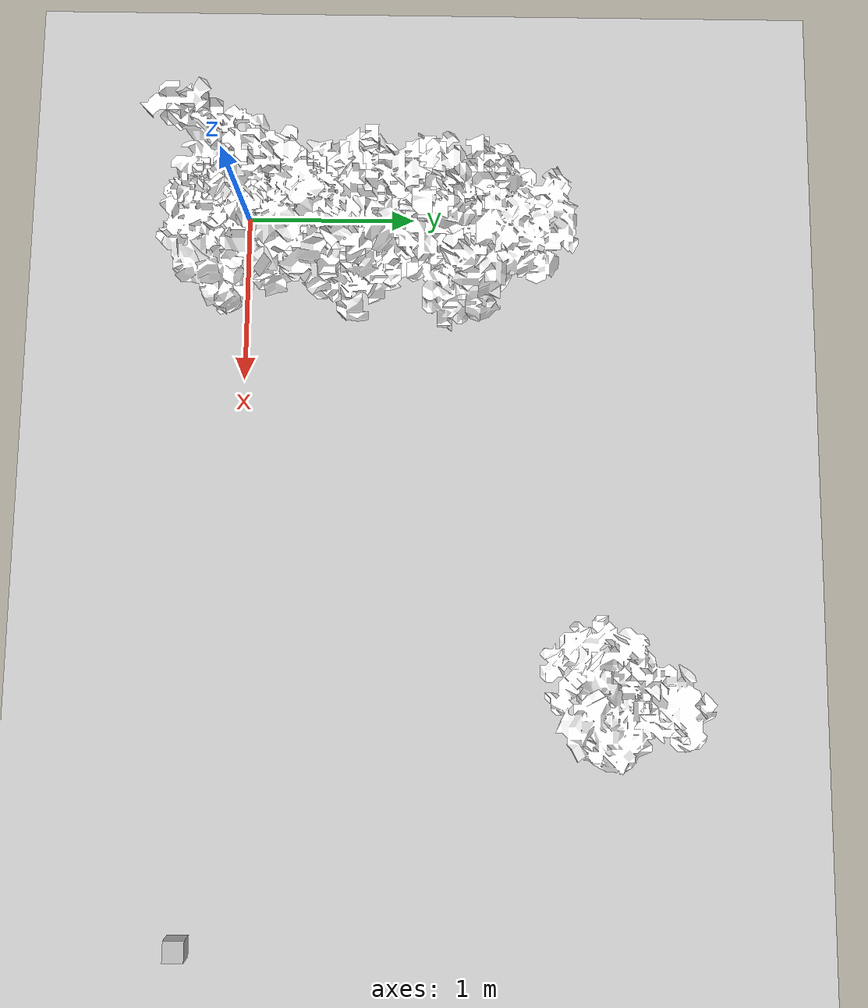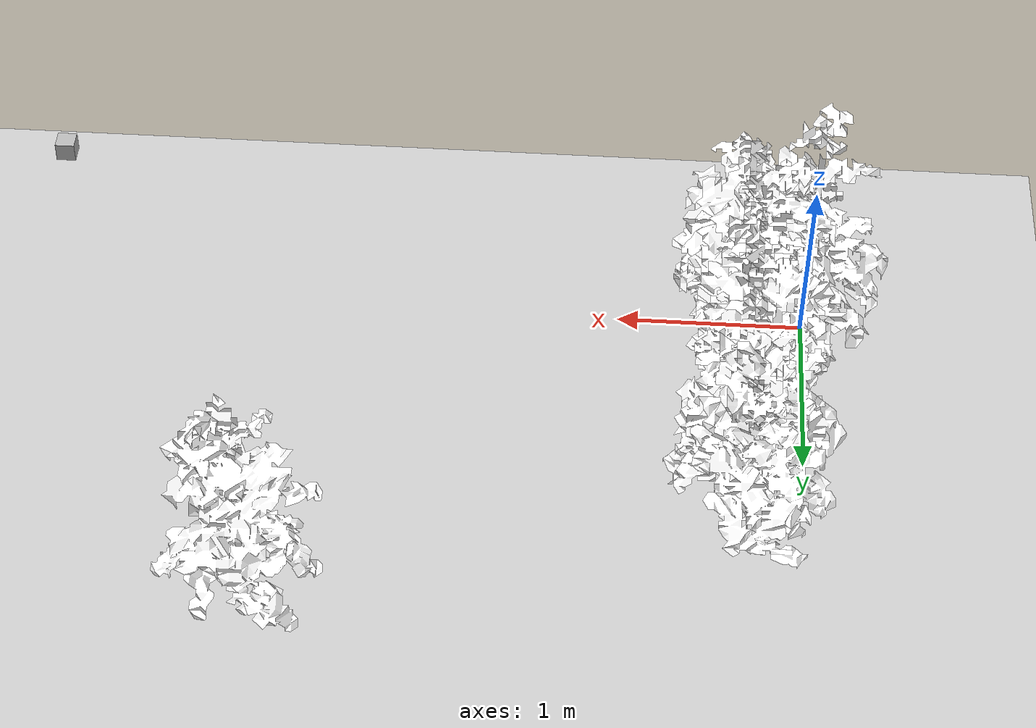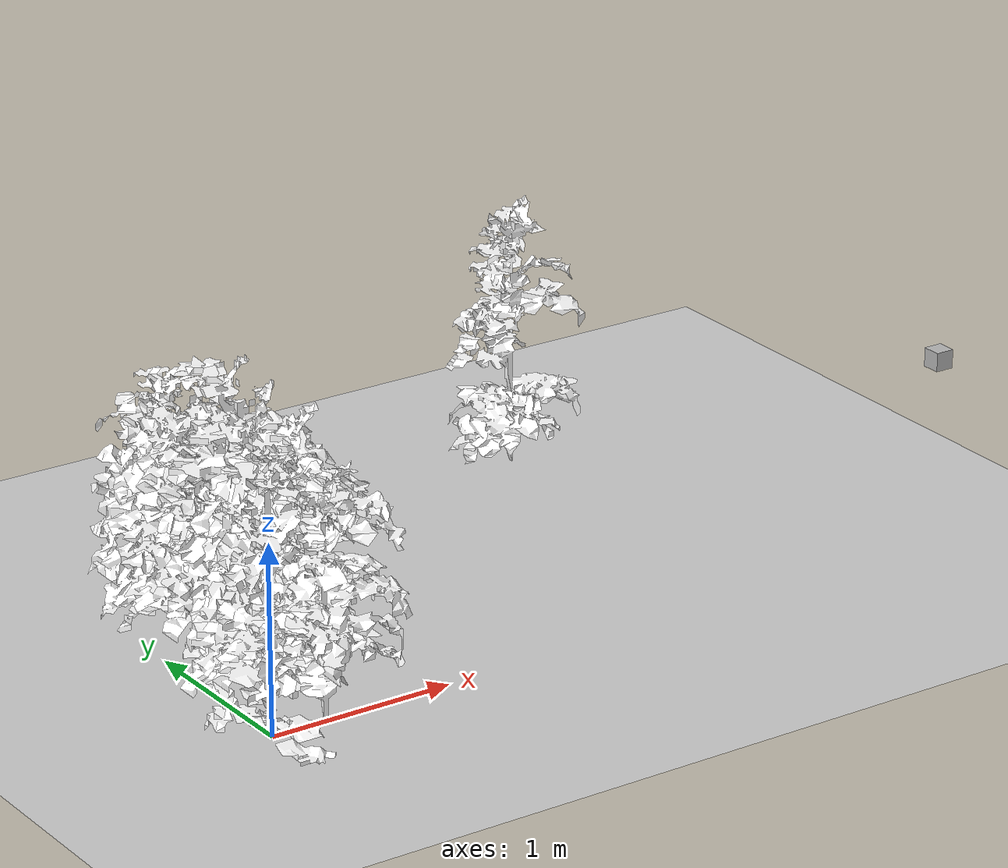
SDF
<sdf version="1.7">
 <world name="field">
  <physics name="1ms" type="ignored">
   <max_step_size>0.001</max_step_size>
   <real_time_factor>1</real_time_factor>
   <real_time_update_rate>1000</real_time_update_rate>
  </physics>
  <plugin name="ignition::gazebo::systems::Physics" filename="ignition-gazebo-physics-system"/>
  <plugin name="ignition::gazebo::systems::UserCommands" filename="ignition-gazebo-user-commands-system"/>
  <plugin name="ignition::gazebo::systems::SceneBroadcaster" filename="ignition-gazebo-scene-broadcaster-system"/>
  <plugin filename="ignition-gazebo-sensors-system" name="ignition::gazebo::systems::Sensors">
   <render_engine>ogre2</render_engine>
  </plugin>
  <scene><ambient>1 1 1 1</ambient><background>0.8 0.8 0.8 1</background><shadows>1</shadows></scene>
  <light name="sun" type="directional">
   <pose>0 0 10 0 -0 0</pose>
   <diffuse>0.8 0.8 0.8 1</diffuse>
   <specular>0.8 0.8 0.8 1</specular>
   <attenuation>
    <range>1000</range>
    <constant>0.9</constant>
    <linear>0.01</linear>
    <quadratic>0.001</quadratic>
   </attenuation>
   <direction>-0.5 0.1 -0.9</direction>
   <spot><inner_angle>0</inner_angle><outer_angle>0</outer_angle><falloff>0</falloff></spot>
  </light>
  <gravity>0 0 -9.8</gravity>
  <magnetic_field>6e-06 2.3e-05 -4.2e-05</magnetic_field>
  <atmosphere type="adiabatic"/>
  <include><uri>ground</uri><name>ground</name><pose>5.0 5.0 0 0 0 0</pose></include>
  <include><uri>tomato_0</uri><name>tomato_0</name></include>
  <include><uri>tomato_10</uri><name>tomato_10</name><pose>0.3 0.0 0 0 0 0</pose></include>
  <include><uri>tomato_11</uri><name>tomato_11</name><pose>0.3 0.3 0 0 0 0</pose></include>
  <include><uri>tomato_12</uri><name>tomato_12</name><pose>0.3 0.6 0 0 0 0</pose></include>
  <include><uri>tomato_13</uri><name>tomato_13</name><pose>0.3 0.8999999999999999 0 0 0 0</pose></include>
  <include><uri>tomato_14</uri><name>tomato_14</name><pose>0.3 1.2 0 0 0 0</pose></include>
  <include><uri>tomato_15</uri><name>tomato_15</name><pose>0.3 1.5 0 0 0 0</pose></include>
  <include><uri>tomato_27</uri><name>tomato_27</name><pose>2.8 2.1 0 0 0 0</pose></include>
  <model name="segmentation_model">
   <pose>4 0 1.0 0 0.0 3.14</pose>
   <link name="link">
    <pose>0.05 0.05 0.05 0 0 0</pose>
    <inertial>
     <mass>0.1</mass>
     <inertia><ixx>0.000166667</ixx><iyy>0.000166667</iyy><izz>0.000166667</izz></inertia>
    </inertial>
    <collision name="collision"><geometry><box><size>0.1 0.1 0.1</size></box></geometry></collision>
    <visual name="visual"><geometry><box><size>0.1 0.1 0.1</size></box></geometry></visual>
    <sensor name="segmentation_camera" type="segmentation">
     <topic>segmentation</topic>
     <camera>
      <segmentation_type>instance</segmentation_type>
      <horizontal_fov>1.047</horizontal_fov>
      <image><width>800</width><height>600</height></image>
      <clip><near>0.1</near><far>10</far></clip>
     </camera>
     <always_on>1</always_on>
     <update_rate>30</update_rate>
     <visualize>true</visualize>
    </sensor>
   </link>
  </model>
 </world>
</sdf>

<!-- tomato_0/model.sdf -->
<sdf version="1.6">
  <model name="tomato_0">
    <static>true</static>
    <link name="link">
      <collision name="collision">
        <geometry>
          <box>
            <size>.1 .1 1</size>
          </box>
        </geometry>
      </collision>
      <visual name="branch">
        <geometry>
          <mesh>
            <uri>file://tomato_0/meshes/tomato.dae</uri>
            <submesh>
              <name>Branch1</name>
            </submesh>
          </mesh>
        </geometry>
        <material>
          <diffuse>1.0 1.0 1.0</diffuse>
          <pbr>
            <metal>
              <albedo_map>file://tomato_0/materials/textures/AG15brn1.png</albedo_map>
            </metal>
          </pbr>
        </material>
          <plugin filename="ignition-gazebo-label-system" name="ignition::gazebo::systems::Label">
            <label>1</label>
          </plugin>
      </visual>
      <visual name="leaf1">
        <geometry>
          <mesh>
            <uri>file://tomato_0/meshes/tomato.dae</uri>
            <submesh>
              <name>Leaf1</name>
            </submesh>
          </mesh>
        </geometry>
        <material>
          <diffuse>1.0 1.0 1.0</diffuse>
          <pbr>
            <metal>
              <albedo_map>file://tomato_0/materials/textures/AG15lef1.png</albedo_map>
            </metal>
          </pbr>
        </material>
          <plugin filename="ignition-gazebo-label-system" name="ignition::gazebo::systems::Label">
            <label>1</label>
          </plugin>
      </visual>
      <visual name="leaf2">
        <geometry>
          <mesh>
            <uri>file://tomato_0/meshes/tomato.dae</uri>
            <submesh>
              <name>Leaf2</name>
            </submesh>
          </mesh>
        </geometry>
        <material>
          <diffuse>1.0 1.0 1.0</diffuse>
          <pbr>
            <metal>
              <albedo_map>file://tomato_0/materials/textures/AG15lef2.png</albedo_map>
            </metal>
          </pbr>
        </material>
          <plugin filename="ignition-gazebo-label-system" name="ignition::gazebo::systems::Label">
            <label>1</label>
          </plugin>
      </visual>
      <visual name="fruit1">
        <geometry>
          <mesh>
            <uri>file://tomato_0/meshes/tomato.dae</uri>
            <submesh>
              <name>Fruit1</name>
            </submesh>
          </mesh>
        </geometry>
        <material>
          <diffuse>1.0 1.0 1.0</diffuse>
          <pbr>
            <metal>
              <albedo_map>file://tomato_0/materials/textures/AG15frt1.png</albedo_map>
            </metal>
          </pbr>
        </material>
          <plugin filename="ignition-gazebo-label-system" name="ignition::gazebo::systems::Label">
            <label>1</label>
          </plugin>
      </visual>
      <visual name="fruit2">
        <geometry>
          <mesh>
            <uri>file://tomato_0/meshes/tomato.dae</uri>
            <submesh>
              <name>Fruit2</name>
            </submesh>
          </mesh>
        </geometry>
        <material>
          <diffuse>1.0 1.0 1.0</diffuse>
          <pbr>
            <metal>
              <albedo_map>file://tomato_0/materials/textures/AG15frt2.png</albedo_map>
            </metal>
          </pbr>
        </material>
          <plugin filename="ignition-gazebo-label-system" name="ignition::gazebo::systems::Label">
            <label>1</label>
          </plugin>
      </visual>
      <visual name="fruit3">
        <geometry>
          <mesh>
            <uri>file://tomato_0/meshes/tomato.dae</uri>
            <submesh>
              <name>Fruit3</name>
            </submesh>
          </mesh>
        </geometry>
        <material>
          <diffuse>1.0 1.0 1.0</diffuse>
          <pbr>
            <metal>
              <albedo_map>file://tomato_0/materials/textures/AG15frt3.png</albedo_map>
            </metal>
          </pbr>
        </material>
      </visual>
          <plugin filename="ignition-gazebo-label-system" name="ignition::gazebo::systems::Label">
            <label>1</label>
          </plugin>
      <visual name="fruit4">
        <geometry>
          <mesh>
            <uri>file://tomato_0/meshes/tomato.dae</uri>
            <submesh>
              <name>Fruit4</name>
            </submesh>
          </mesh>
        </geometry>
        <material>
          <diffuse>1.0 1.0 1.0</diffuse>
          <pbr>
            <metal>
              <albedo_map>file://tomato_0/materials/textures/AG15frt4.png</albedo_map>
            </metal>
          </pbr>
        </material>
          <plugin filename="ignition-gazebo-label-system" name="ignition::gazebo::systems::Label">
            <label>1</label>
          </plugin>
      </visual>
      <visual name="blossom1">
        <geometry>
          <mesh>
            <uri>file://tomato_0/meshes/tomato.dae</uri>
            <submesh>
              <name>Blossom1</name>
            </submesh>
          </mesh>
        </geometry>
        <material>
          <diffuse>1.0 1.0 1.0</diffuse>
          <pbr>
            <metal>
              <albedo_map>file://tomato_0/materials/textures/AG15blo1.png</albedo_map>
            </metal>
          </pbr>
        </material>
          <plugin filename="ignition-gazebo-label-system" name="ignition::gazebo::systems::Label">
            <label>1</label>
          </plugin>
      </visual>
      <visual name="blossom2">
        <geometry>
          <mesh>
            <uri>file://tomato_0/meshes/tomato.dae</uri>
            <submesh>
              <name>Blossom2</name>
            </submesh>
          </mesh>
        </geometry>
        <material>
          <diffuse>1.0 1.0 1.0</diffuse>
          <pbr>
            <metal>
              <albedo_map>file://tomato_0/materials/textures/AG15blo2.png</albedo_map>
            </metal>
          </pbr>
        </material>
          <plugin filename="ignition-gazebo-label-system" name="ignition::gazebo::systems::Label">
            <label>1</label>
          </plugin>
      </visual>
      <visual name="blossom3">
        <geometry>
          <mesh>
            <uri>file://tomato_0/meshes/tomato.dae</uri>
            <submesh>
              <name>Blossom3</name>
            </submesh>
          </mesh>
        </geometry>
        <material>
          <diffuse>1.0 1.0 1.0</diffuse>
          <pbr>
            <metal>
              <albedo_map>file://tomato_0/materials/textures/AG15blo3.png</albedo_map>
            </metal>
          </pbr>
        </material>
          <plugin filename="ignition-gazebo-label-system" name="ignition::gazebo::systems::Label">
            <label>1</label>
          </plugin>
      </visual>
    </link>
  </model>
</sdf>

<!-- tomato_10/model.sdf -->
<sdf version="1.6">
  <model name="tomato_10">
    <static>true</static>
    <link name="link">
      <collision name="collision">
        <geometry>
          <box>
            <size>.1 .1 1</size>
          </box>
        </geometry>
      </collision>
      <visual name="branch">
        <geometry>
          <mesh>
            <uri>file://tomato_10/meshes/tomato.dae</uri>
            <submesh>
              <name>Branch1</name>
            </submesh>
          </mesh>
        </geometry>
        <material>
          <diffuse>1.0 1.0 1.0</diffuse>
          <pbr>
            <metal>
              <albedo_map>file://tomato_10/materials/textures/AG15brn1.png</albedo_map>
            </metal>
          </pbr>
        </material>
          <plugin filename="ignition-gazebo-label-system" name="ignition::gazebo::systems::Label">
            <label>1</label>
          </plugin>
      </visual>
      <visual name="leaf1">
        <geometry>
          <mesh>
            <uri>file://tomato_10/meshes/tomato.dae</uri>
            <submesh>
              <name>Leaf1</name>
            </submesh>
          </mesh>
        </geometry>
        <material>
          <diffuse>1.0 1.0 1.0</diffuse>
          <pbr>
            <metal>
              <albedo_map>file://tomato_10/materials/textures/AG15lef1.png</albedo_map>
            </metal>
          </pbr>
        </material>
          <plugin filename="ignition-gazebo-label-system" name="ignition::gazebo::systems::Label">
            <label>1</label>
          </plugin>
      </visual>
      <visual name="leaf2">
        <geometry>
          <mesh>
            <uri>file://tomato_10/meshes/tomato.dae</uri>
            <submesh>
              <name>Leaf2</name>
            </submesh>
          </mesh>
        </geometry>
        <material>
          <diffuse>1.0 1.0 1.0</diffuse>
          <pbr>
            <metal>
              <albedo_map>file://tomato_10/materials/textures/AG15lef2.png</albedo_map>
            </metal>
          </pbr>
        </material>
          <plugin filename="ignition-gazebo-label-system" name="ignition::gazebo::systems::Label">
            <label>1</label>
          </plugin>
      </visual>
      <visual name="fruit1">
        <geometry>
          <mesh>
            <uri>file://tomato_10/meshes/tomato.dae</uri>
            <submesh>
              <name>Fruit1</name>
            </submesh>
          </mesh>
        </geometry>
        <material>
          <diffuse>1.0 1.0 1.0</diffuse>
          <pbr>
            <metal>
              <albedo_map>file://tomato_10/materials/textures/AG15frt1.png</albedo_map>
            </metal>
          </pbr>
        </material>
          <plugin filename="ignition-gazebo-label-system" name="ignition::gazebo::systems::Label">
            <label>1</label>
          </plugin>
      </visual>
      <visual name="fruit2">
        <geometry>
          <mesh>
            <uri>file://tomato_10/meshes/tomato.dae</uri>
            <submesh>
              <name>Fruit2</name>
            </submesh>
          </mesh>
        </geometry>
        <material>
          <diffuse>1.0 1.0 1.0</diffuse>
          <pbr>
            <metal>
              <albedo_map>file://tomato_10/materials/textures/AG15frt2.png</albedo_map>
            </metal>
          </pbr>
        </material>
          <plugin filename="ignition-gazebo-label-system" name="ignition::gazebo::systems::Label">
            <label>1</label>
          </plugin>
      </visual>
      <visual name="fruit3">
        <geometry>
          <mesh>
            <uri>file://tomato_10/meshes/tomato.dae</uri>
            <submesh>
              <name>Fruit3</name>
            </submesh>
          </mesh>
        </geometry>
        <material>
          <diffuse>1.0 1.0 1.0</diffuse>
          <pbr>
            <metal>
              <albedo_map>file://tomato_10/materials/textures/AG15frt3.png</albedo_map>
            </metal>
          </pbr>
        </material>
      </visual>
          <plugin filename="ignition-gazebo-label-system" name="ignition::gazebo::systems::Label">
            <label>1</label>
          </plugin>
      <visual name="fruit4">
        <geometry>
          <mesh>
            <uri>file://tomato_10/meshes/tomato.dae</uri>
            <submesh>
              <name>Fruit4</name>
            </submesh>
          </mesh>
        </geometry>
        <material>
          <diffuse>1.0 1.0 1.0</diffuse>
          <pbr>
            <metal>
              <albedo_map>file://tomato_10/materials/textures/AG15frt4.png</albedo_map>
            </metal>
          </pbr>
        </material>
          <plugin filename="ignition-gazebo-label-system" name="ignition::gazebo::systems::Label">
            <label>1</label>
          </plugin>
      </visual>
      <visual name="blossom1">
        <geometry>
          <mesh>
            <uri>file://tomato_10/meshes/tomato.dae</uri>
            <submesh>
              <name>Blossom1</name>
            </submesh>
          </mesh>
        </geometry>
        <material>
          <diffuse>1.0 1.0 1.0</diffuse>
          <pbr>
            <metal>
              <albedo_map>file://tomato_10/materials/textures/AG15blo1.png</albedo_map>
            </metal>
          </pbr>
        </material>
          <plugin filename="ignition-gazebo-label-system" name="ignition::gazebo::systems::Label">
            <label>1</label>
          </plugin>
      </visual>
      <visual name="blossom2">
        <geometry>
          <mesh>
            <uri>file://tomato_10/meshes/tomato.dae</uri>
            <submesh>
              <name>Blossom2</name>
            </submesh>
          </mesh>
        </geometry>
        <material>
          <diffuse>1.0 1.0 1.0</diffuse>
          <pbr>
            <metal>
              <albedo_map>file://tomato_10/materials/textures/AG15blo2.png</albedo_map>
            </metal>
          </pbr>
        </material>
          <plugin filename="ignition-gazebo-label-system" name="ignition::gazebo::systems::Label">
            <label>1</label>
          </plugin>
      </visual>
      <visual name="blossom3">
        <geometry>
          <mesh>
            <uri>file://tomato_10/meshes/tomato.dae</uri>
            <submesh>
              <name>Blossom3</name>
            </submesh>
          </mesh>
        </geometry>
        <material>
          <diffuse>1.0 1.0 1.0</diffuse>
          <pbr>
            <metal>
              <albedo_map>file://tomato_10/materials/textures/AG15blo3.png</albedo_map>
            </metal>
          </pbr>
        </material>
          <plugin filename="ignition-gazebo-label-system" name="ignition::gazebo::systems::Label">
            <label>1</label>
          </plugin>
      </visual>
    </link>
  </model>
</sdf>

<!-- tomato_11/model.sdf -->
<sdf version="1.6">
  <model name="tomato_11">
    <static>true</static>
    <link name="link">
      <collision name="collision">
        <geometry>
          <box>
            <size>.1 .1 1</size>
          </box>
        </geometry>
      </collision>
      <visual name="branch">
        <geometry>
          <mesh>
            <uri>file://tomato_11/meshes/tomato.dae</uri>
            <submesh>
              <name>Branch1</name>
            </submesh>
          </mesh>
        </geometry>
        <material>
          <diffuse>1.0 1.0 1.0</diffuse>
          <pbr>
            <metal>
              <albedo_map>file://tomato_11/materials/textures/AG15brn1.png</albedo_map>
            </metal>
          </pbr>
        </material>
          <plugin filename="ignition-gazebo-label-system" name="ignition::gazebo::systems::Label">
            <label>1</label>
          </plugin>
      </visual>
      <visual name="leaf1">
        <geometry>
          <mesh>
            <uri>file://tomato_11/meshes/tomato.dae</uri>
            <submesh>
              <name>Leaf1</name>
            </submesh>
          </mesh>
        </geometry>
        <material>
          <diffuse>1.0 1.0 1.0</diffuse>
          <pbr>
            <metal>
              <albedo_map>file://tomato_11/materials/textures/AG15lef1.png</albedo_map>
            </metal>
          </pbr>
        </material>
          <plugin filename="ignition-gazebo-label-system" name="ignition::gazebo::systems::Label">
            <label>1</label>
          </plugin>
      </visual>
      <visual name="leaf2">
        <geometry>
          <mesh>
            <uri>file://tomato_11/meshes/tomato.dae</uri>
            <submesh>
              <name>Leaf2</name>
            </submesh>
          </mesh>
        </geometry>
        <material>
          <diffuse>1.0 1.0 1.0</diffuse>
          <pbr>
            <metal>
              <albedo_map>file://tomato_11/materials/textures/AG15lef2.png</albedo_map>
            </metal>
          </pbr>
        </material>
          <plugin filename="ignition-gazebo-label-system" name="ignition::gazebo::systems::Label">
            <label>1</label>
          </plugin>
      </visual>
      <visual name="fruit1">
        <geometry>
          <mesh>
            <uri>file://tomato_11/meshes/tomato.dae</uri>
            <submesh>
              <name>Fruit1</name>
            </submesh>
          </mesh>
        </geometry>
        <material>
          <diffuse>1.0 1.0 1.0</diffuse>
          <pbr>
            <metal>
              <albedo_map>file://tomato_11/materials/textures/AG15frt1.png</albedo_map>
            </metal>
          </pbr>
        </material>
          <plugin filename="ignition-gazebo-label-system" name="ignition::gazebo::systems::Label">
            <label>1</label>
          </plugin>
      </visual>
      <visual name="fruit2">
        <geometry>
          <mesh>
            <uri>file://tomato_11/meshes/tomato.dae</uri>
            <submesh>
              <name>Fruit2</name>
            </submesh>
          </mesh>
        </geometry>
        <material>
          <diffuse>1.0 1.0 1.0</diffuse>
          <pbr>
            <metal>
              <albedo_map>file://tomato_11/materials/textures/AG15frt2.png</albedo_map>
            </metal>
          </pbr>
        </material>
          <plugin filename="ignition-gazebo-label-system" name="ignition::gazebo::systems::Label">
            <label>1</label>
          </plugin>
      </visual>
      <visual name="fruit3">
        <geometry>
          <mesh>
            <uri>file://tomato_11/meshes/tomato.dae</uri>
            <submesh>
              <name>Fruit3</name>
            </submesh>
          </mesh>
        </geometry>
        <material>
          <diffuse>1.0 1.0 1.0</diffuse>
          <pbr>
            <metal>
              <albedo_map>file://tomato_11/materials/textures/AG15frt3.png</albedo_map>
            </metal>
          </pbr>
        </material>
      </visual>
          <plugin filename="ignition-gazebo-label-system" name="ignition::gazebo::systems::Label">
            <label>1</label>
          </plugin>
      <visual name="fruit4">
        <geometry>
          <mesh>
            <uri>file://tomato_11/meshes/tomato.dae</uri>
            <submesh>
              <name>Fruit4</name>
            </submesh>
          </mesh>
        </geometry>
        <material>
          <diffuse>1.0 1.0 1.0</diffuse>
          <pbr>
            <metal>
              <albedo_map>file://tomato_11/materials/textures/AG15frt4.png</albedo_map>
            </metal>
          </pbr>
        </material>
          <plugin filename="ignition-gazebo-label-system" name="ignition::gazebo::systems::Label">
            <label>1</label>
          </plugin>
      </visual>
      <visual name="blossom1">
        <geometry>
          <mesh>
            <uri>file://tomato_11/meshes/tomato.dae</uri>
            <submesh>
              <name>Blossom1</name>
            </submesh>
          </mesh>
        </geometry>
        <material>
          <diffuse>1.0 1.0 1.0</diffuse>
          <pbr>
            <metal>
              <albedo_map>file://tomato_11/materials/textures/AG15blo1.png</albedo_map>
            </metal>
          </pbr>
        </material>
          <plugin filename="ignition-gazebo-label-system" name="ignition::gazebo::systems::Label">
            <label>1</label>
          </plugin>
      </visual>
      <visual name="blossom2">
        <geometry>
          <mesh>
            <uri>file://tomato_11/meshes/tomato.dae</uri>
            <submesh>
              <name>Blossom2</name>
            </submesh>
          </mesh>
        </geometry>
        <material>
          <diffuse>1.0 1.0 1.0</diffuse>
          <pbr>
            <metal>
              <albedo_map>file://tomato_11/materials/textures/AG15blo2.png</albedo_map>
            </metal>
          </pbr>
        </material>
          <plugin filename="ignition-gazebo-label-system" name="ignition::gazebo::systems::Label">
            <label>1</label>
          </plugin>
      </visual>
      <visual name="blossom3">
        <geometry>
          <mesh>
            <uri>file://tomato_11/meshes/tomato.dae</uri>
            <submesh>
              <name>Blossom3</name>
            </submesh>
          </mesh>
        </geometry>
        <material>
          <diffuse>1.0 1.0 1.0</diffuse>
          <pbr>
            <metal>
              <albedo_map>file://tomato_11/materials/textures/AG15blo3.png</albedo_map>
            </metal>
          </pbr>
        </material>
          <plugin filename="ignition-gazebo-label-system" name="ignition::gazebo::systems::Label">
            <label>1</label>
          </plugin>
      </visual>
    </link>
  </model>
</sdf>

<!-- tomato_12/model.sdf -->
<sdf version="1.6">
  <model name="tomato_12">
    <static>true</static>
    <link name="link">
      <collision name="collision">
        <geometry>
          <box>
            <size>.1 .1 1</size>
          </box>
        </geometry>
      </collision>
      <visual name="branch">
        <geometry>
          <mesh>
            <uri>file://tomato_12/meshes/tomato.dae</uri>
            <submesh>
              <name>Branch1</name>
            </submesh>
          </mesh>
        </geometry>
        <material>
          <diffuse>1.0 1.0 1.0</diffuse>
          <pbr>
            <metal>
              <albedo_map>file://tomato_12/materials/textures/AG15brn1.png</albedo_map>
            </metal>
          </pbr>
        </material>
          <plugin filename="ignition-gazebo-label-system" name="ignition::gazebo::systems::Label">
            <label>1</label>
          </plugin>
      </visual>
      <visual name="leaf1">
        <geometry>
          <mesh>
            <uri>file://tomato_12/meshes/tomato.dae</uri>
            <submesh>
              <name>Leaf1</name>
            </submesh>
          </mesh>
        </geometry>
        <material>
          <diffuse>1.0 1.0 1.0</diffuse>
          <pbr>
            <metal>
              <albedo_map>file://tomato_12/materials/textures/AG15lef1.png</albedo_map>
            </metal>
          </pbr>
        </material>
          <plugin filename="ignition-gazebo-label-system" name="ignition::gazebo::systems::Label">
            <label>1</label>
          </plugin>
      </visual>
      <visual name="leaf2">
        <geometry>
          <mesh>
            <uri>file://tomato_12/meshes/tomato.dae</uri>
            <submesh>
              <name>Leaf2</name>
            </submesh>
          </mesh>
        </geometry>
        <material>
          <diffuse>1.0 1.0 1.0</diffuse>
          <pbr>
            <metal>
              <albedo_map>file://tomato_12/materials/textures/AG15lef2.png</albedo_map>
            </metal>
          </pbr>
        </material>
          <plugin filename="ignition-gazebo-label-system" name="ignition::gazebo::systems::Label">
            <label>1</label>
          </plugin>
      </visual>
      <visual name="fruit1">
        <geometry>
          <mesh>
            <uri>file://tomato_12/meshes/tomato.dae</uri>
            <submesh>
              <name>Fruit1</name>
            </submesh>
          </mesh>
        </geometry>
        <material>
          <diffuse>1.0 1.0 1.0</diffuse>
          <pbr>
            <metal>
              <albedo_map>file://tomato_12/materials/textures/AG15frt1.png</albedo_map>
            </metal>
          </pbr>
        </material>
          <plugin filename="ignition-gazebo-label-system" name="ignition::gazebo::systems::Label">
            <label>1</label>
          </plugin>
      </visual>
      <visual name="fruit2">
        <geometry>
          <mesh>
            <uri>file://tomato_12/meshes/tomato.dae</uri>
            <submesh>
              <name>Fruit2</name>
            </submesh>
          </mesh>
        </geometry>
        <material>
          <diffuse>1.0 1.0 1.0</diffuse>
          <pbr>
            <metal>
              <albedo_map>file://tomato_12/materials/textures/AG15frt2.png</albedo_map>
            </metal>
          </pbr>
        </material>
          <plugin filename="ignition-gazebo-label-system" name="ignition::gazebo::systems::Label">
            <label>1</label>
          </plugin>
      </visual>
      <visual name="fruit3">
        <geometry>
          <mesh>
            <uri>file://tomato_12/meshes/tomato.dae</uri>
            <submesh>
              <name>Fruit3</name>
            </submesh>
          </mesh>
        </geometry>
        <material>
          <diffuse>1.0 1.0 1.0</diffuse>
          <pbr>
            <metal>
              <albedo_map>file://tomato_12/materials/textures/AG15frt3.png</albedo_map>
            </metal>
          </pbr>
        </material>
      </visual>
          <plugin filename="ignition-gazebo-label-system" name="ignition::gazebo::systems::Label">
            <label>1</label>
          </plugin>
      <visual name="fruit4">
        <geometry>
          <mesh>
            <uri>file://tomato_12/meshes/tomato.dae</uri>
            <submesh>
              <name>Fruit4</name>
            </submesh>
          </mesh>
        </geometry>
        <material>
          <diffuse>1.0 1.0 1.0</diffuse>
          <pbr>
            <metal>
              <albedo_map>file://tomato_12/materials/textures/AG15frt4.png</albedo_map>
            </metal>
          </pbr>
        </material>
          <plugin filename="ignition-gazebo-label-system" name="ignition::gazebo::systems::Label">
            <label>1</label>
          </plugin>
      </visual>
      <visual name="blossom1">
        <geometry>
          <mesh>
            <uri>file://tomato_12/meshes/tomato.dae</uri>
            <submesh>
              <name>Blossom1</name>
            </submesh>
          </mesh>
        </geometry>
        <material>
          <diffuse>1.0 1.0 1.0</diffuse>
          <pbr>
            <metal>
              <albedo_map>file://tomato_12/materials/textures/AG15blo1.png</albedo_map>
            </metal>
          </pbr>
        </material>
          <plugin filename="ignition-gazebo-label-system" name="ignition::gazebo::systems::Label">
            <label>1</label>
          </plugin>
      </visual>
      <visual name="blossom2">
        <geometry>
          <mesh>
            <uri>file://tomato_12/meshes/tomato.dae</uri>
            <submesh>
              <name>Blossom2</name>
            </submesh>
          </mesh>
        </geometry>
        <material>
          <diffuse>1.0 1.0 1.0</diffuse>
          <pbr>
            <metal>
              <albedo_map>file://tomato_12/materials/textures/AG15blo2.png</albedo_map>
            </metal>
          </pbr>
        </material>
          <plugin filename="ignition-gazebo-label-system" name="ignition::gazebo::systems::Label">
            <label>1</label>
          </plugin>
      </visual>
      <visual name="blossom3">
        <geometry>
          <mesh>
            <uri>file://tomato_12/meshes/tomato.dae</uri>
            <submesh>
              <name>Blossom3</name>
            </submesh>
          </mesh>
        </geometry>
        <material>
          <diffuse>1.0 1.0 1.0</diffuse>
          <pbr>
            <metal>
              <albedo_map>file://tomato_12/materials/textures/AG15blo3.png</albedo_map>
            </metal>
          </pbr>
        </material>
          <plugin filename="ignition-gazebo-label-system" name="ignition::gazebo::systems::Label">
            <label>1</label>
          </plugin>
      </visual>
    </link>
  </model>
</sdf>

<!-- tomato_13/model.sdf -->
<sdf version="1.6">
  <model name="tomato_13">
    <static>true</static>
    <link name="link">
      <collision name="collision">
        <geometry>
          <box>
            <size>.1 .1 1</size>
          </box>
        </geometry>
      </collision>
      <visual name="branch">
        <geometry>
          <mesh>
            <uri>file://tomato_13/meshes/tomato.dae</uri>
            <submesh>
              <name>Branch1</name>
            </submesh>
          </mesh>
        </geometry>
        <material>
          <diffuse>1.0 1.0 1.0</diffuse>
          <pbr>
            <metal>
              <albedo_map>file://tomato_13/materials/textures/AG15brn1.png</albedo_map>
            </metal>
          </pbr>
        </material>
          <plugin filename="ignition-gazebo-label-system" name="ignition::gazebo::systems::Label">
            <label>1</label>
          </plugin>
      </visual>
      <visual name="leaf1">
        <geometry>
          <mesh>
            <uri>file://tomato_13/meshes/tomato.dae</uri>
            <submesh>
              <name>Leaf1</name>
            </submesh>
          </mesh>
        </geometry>
        <material>
          <diffuse>1.0 1.0 1.0</diffuse>
          <pbr>
            <metal>
              <albedo_map>file://tomato_13/materials/textures/AG15lef1.png</albedo_map>
            </metal>
          </pbr>
        </material>
          <plugin filename="ignition-gazebo-label-system" name="ignition::gazebo::systems::Label">
            <label>1</label>
          </plugin>
      </visual>
      <visual name="leaf2">
        <geometry>
          <mesh>
            <uri>file://tomato_13/meshes/tomato.dae</uri>
            <submesh>
              <name>Leaf2</name>
            </submesh>
          </mesh>
        </geometry>
        <material>
          <diffuse>1.0 1.0 1.0</diffuse>
          <pbr>
            <metal>
              <albedo_map>file://tomato_13/materials/textures/AG15lef2.png</albedo_map>
            </metal>
          </pbr>
        </material>
          <plugin filename="ignition-gazebo-label-system" name="ignition::gazebo::systems::Label">
            <label>1</label>
          </plugin>
      </visual>
      <visual name="fruit1">
        <geometry>
          <mesh>
            <uri>file://tomato_13/meshes/tomato.dae</uri>
            <submesh>
              <name>Fruit1</name>
            </submesh>
          </mesh>
        </geometry>
        <material>
          <diffuse>1.0 1.0 1.0</diffuse>
          <pbr>
            <metal>
              <albedo_map>file://tomato_13/materials/textures/AG15frt1.png</albedo_map>
            </metal>
          </pbr>
        </material>
          <plugin filename="ignition-gazebo-label-system" name="ignition::gazebo::systems::Label">
            <label>1</label>
          </plugin>
      </visual>
      <visual name="fruit2">
        <geometry>
          <mesh>
            <uri>file://tomato_13/meshes/tomato.dae</uri>
            <submesh>
              <name>Fruit2</name>
            </submesh>
          </mesh>
        </geometry>
        <material>
          <diffuse>1.0 1.0 1.0</diffuse>
          <pbr>
            <metal>
              <albedo_map>file://tomato_13/materials/textures/AG15frt2.png</albedo_map>
            </metal>
          </pbr>
        </material>
          <plugin filename="ignition-gazebo-label-system" name="ignition::gazebo::systems::Label">
            <label>1</label>
          </plugin>
      </visual>
      <visual name="fruit3">
        <geometry>
          <mesh>
            <uri>file://tomato_13/meshes/tomato.dae</uri>
            <submesh>
              <name>Fruit3</name>
            </submesh>
          </mesh>
        </geometry>
        <material>
          <diffuse>1.0 1.0 1.0</diffuse>
          <pbr>
            <metal>
              <albedo_map>file://tomato_13/materials/textures/AG15frt3.png</albedo_map>
            </metal>
          </pbr>
        </material>
      </visual>
          <plugin filename="ignition-gazebo-label-system" name="ignition::gazebo::systems::Label">
            <label>1</label>
          </plugin>
      <visual name="fruit4">
        <geometry>
          <mesh>
            <uri>file://tomato_13/meshes/tomato.dae</uri>
            <submesh>
              <name>Fruit4</name>
            </submesh>
          </mesh>
        </geometry>
        <material>
          <diffuse>1.0 1.0 1.0</diffuse>
          <pbr>
            <metal>
              <albedo_map>file://tomato_13/materials/textures/AG15frt4.png</albedo_map>
            </metal>
          </pbr>
        </material>
          <plugin filename="ignition-gazebo-label-system" name="ignition::gazebo::systems::Label">
            <label>1</label>
          </plugin>
      </visual>
      <visual name="blossom1">
        <geometry>
          <mesh>
            <uri>file://tomato_13/meshes/tomato.dae</uri>
            <submesh>
              <name>Blossom1</name>
            </submesh>
          </mesh>
        </geometry>
        <material>
          <diffuse>1.0 1.0 1.0</diffuse>
          <pbr>
            <metal>
              <albedo_map>file://tomato_13/materials/textures/AG15blo1.png</albedo_map>
            </metal>
          </pbr>
        </material>
          <plugin filename="ignition-gazebo-label-system" name="ignition::gazebo::systems::Label">
            <label>1</label>
          </plugin>
      </visual>
      <visual name="blossom2">
        <geometry>
          <mesh>
            <uri>file://tomato_13/meshes/tomato.dae</uri>
            <submesh>
              <name>Blossom2</name>
            </submesh>
          </mesh>
        </geometry>
        <material>
          <diffuse>1.0 1.0 1.0</diffuse>
          <pbr>
            <metal>
              <albedo_map>file://tomato_13/materials/textures/AG15blo2.png</albedo_map>
            </metal>
          </pbr>
        </material>
          <plugin filename="ignition-gazebo-label-system" name="ignition::gazebo::systems::Label">
            <label>1</label>
          </plugin>
      </visual>
      <visual name="blossom3">
        <geometry>
          <mesh>
            <uri>file://tomato_13/meshes/tomato.dae</uri>
            <submesh>
              <name>Blossom3</name>
            </submesh>
          </mesh>
        </geometry>
        <material>
          <diffuse>1.0 1.0 1.0</diffuse>
          <pbr>
            <metal>
              <albedo_map>file://tomato_13/materials/textures/AG15blo3.png</albedo_map>
            </metal>
          </pbr>
        </material>
          <plugin filename="ignition-gazebo-label-system" name="ignition::gazebo::systems::Label">
            <label>1</label>
          </plugin>
      </visual>
    </link>
  </model>
</sdf>

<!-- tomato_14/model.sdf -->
<sdf version="1.6">
  <model name="tomato_14">
    <static>true</static>
    <link name="link">
      <collision name="collision">
        <geometry>
          <box>
            <size>.1 .1 1</size>
          </box>
        </geometry>
      </collision>
      <visual name="branch">
        <geometry>
          <mesh>
            <uri>file://tomato_14/meshes/tomato.dae</uri>
            <submesh>
              <name>Branch1</name>
            </submesh>
          </mesh>
        </geometry>
        <material>
          <diffuse>1.0 1.0 1.0</diffuse>
          <pbr>
            <metal>
              <albedo_map>file://tomato_14/materials/textures/AG15brn1.png</albedo_map>
            </metal>
          </pbr>
        </material>
          <plugin filename="ignition-gazebo-label-system" name="ignition::gazebo::systems::Label">
            <label>1</label>
          </plugin>
      </visual>
      <visual name="leaf1">
        <geometry>
          <mesh>
            <uri>file://tomato_14/meshes/tomato.dae</uri>
            <submesh>
              <name>Leaf1</name>
            </submesh>
          </mesh>
        </geometry>
        <material>
          <diffuse>1.0 1.0 1.0</diffuse>
          <pbr>
            <metal>
              <albedo_map>file://tomato_14/materials/textures/AG15lef1.png</albedo_map>
            </metal>
          </pbr>
        </material>
          <plugin filename="ignition-gazebo-label-system" name="ignition::gazebo::systems::Label">
            <label>1</label>
          </plugin>
      </visual>
      <visual name="leaf2">
        <geometry>
          <mesh>
            <uri>file://tomato_14/meshes/tomato.dae</uri>
            <submesh>
              <name>Leaf2</name>
            </submesh>
          </mesh>
        </geometry>
        <material>
          <diffuse>1.0 1.0 1.0</diffuse>
          <pbr>
            <metal>
              <albedo_map>file://tomato_14/materials/textures/AG15lef2.png</albedo_map>
            </metal>
          </pbr>
        </material>
          <plugin filename="ignition-gazebo-label-system" name="ignition::gazebo::systems::Label">
            <label>1</label>
          </plugin>
      </visual>
      <visual name="fruit1">
        <geometry>
          <mesh>
            <uri>file://tomato_14/meshes/tomato.dae</uri>
            <submesh>
              <name>Fruit1</name>
            </submesh>
          </mesh>
        </geometry>
        <material>
          <diffuse>1.0 1.0 1.0</diffuse>
          <pbr>
            <metal>
              <albedo_map>file://tomato_14/materials/textures/AG15frt1.png</albedo_map>
            </metal>
          </pbr>
        </material>
          <plugin filename="ignition-gazebo-label-system" name="ignition::gazebo::systems::Label">
            <label>1</label>
          </plugin>
      </visual>
      <visual name="fruit2">
        <geometry>
          <mesh>
            <uri>file://tomato_14/meshes/tomato.dae</uri>
            <submesh>
              <name>Fruit2</name>
            </submesh>
          </mesh>
        </geometry>
        <material>
          <diffuse>1.0 1.0 1.0</diffuse>
          <pbr>
            <metal>
              <albedo_map>file://tomato_14/materials/textures/AG15frt2.png</albedo_map>
            </metal>
          </pbr>
        </material>
          <plugin filename="ignition-gazebo-label-system" name="ignition::gazebo::systems::Label">
            <label>1</label>
          </plugin>
      </visual>
      <visual name="fruit3">
        <geometry>
          <mesh>
            <uri>file://tomato_14/meshes/tomato.dae</uri>
            <submesh>
              <name>Fruit3</name>
            </submesh>
          </mesh>
        </geometry>
        <material>
          <diffuse>1.0 1.0 1.0</diffuse>
          <pbr>
            <metal>
              <albedo_map>file://tomato_14/materials/textures/AG15frt3.png</albedo_map>
            </metal>
          </pbr>
        </material>
      </visual>
          <plugin filename="ignition-gazebo-label-system" name="ignition::gazebo::systems::Label">
            <label>1</label>
          </plugin>
      <visual name="fruit4">
        <geometry>
          <mesh>
            <uri>file://tomato_14/meshes/tomato.dae</uri>
            <submesh>
              <name>Fruit4</name>
            </submesh>
          </mesh>
        </geometry>
        <material>
          <diffuse>1.0 1.0 1.0</diffuse>
          <pbr>
            <metal>
              <albedo_map>file://tomato_14/materials/textures/AG15frt4.png</albedo_map>
            </metal>
          </pbr>
        </material>
          <plugin filename="ignition-gazebo-label-system" name="ignition::gazebo::systems::Label">
            <label>1</label>
          </plugin>
      </visual>
      <visual name="blossom1">
        <geometry>
          <mesh>
            <uri>file://tomato_14/meshes/tomato.dae</uri>
            <submesh>
              <name>Blossom1</name>
            </submesh>
          </mesh>
        </geometry>
        <material>
          <diffuse>1.0 1.0 1.0</diffuse>
          <pbr>
            <metal>
              <albedo_map>file://tomato_14/materials/textures/AG15blo1.png</albedo_map>
            </metal>
          </pbr>
        </material>
          <plugin filename="ignition-gazebo-label-system" name="ignition::gazebo::systems::Label">
            <label>1</label>
          </plugin>
      </visual>
      <visual name="blossom2">
        <geometry>
          <mesh>
            <uri>file://tomato_14/meshes/tomato.dae</uri>
            <submesh>
              <name>Blossom2</name>
            </submesh>
          </mesh>
        </geometry>
        <material>
          <diffuse>1.0 1.0 1.0</diffuse>
          <pbr>
            <metal>
              <albedo_map>file://tomato_14/materials/textures/AG15blo2.png</albedo_map>
            </metal>
          </pbr>
        </material>
          <plugin filename="ignition-gazebo-label-system" name="ignition::gazebo::systems::Label">
            <label>1</label>
          </plugin>
      </visual>
      <visual name="blossom3">
        <geometry>
          <mesh>
            <uri>file://tomato_14/meshes/tomato.dae</uri>
            <submesh>
              <name>Blossom3</name>
            </submesh>
          </mesh>
        </geometry>
        <material>
          <diffuse>1.0 1.0 1.0</diffuse>
          <pbr>
            <metal>
              <albedo_map>file://tomato_14/materials/textures/AG15blo3.png</albedo_map>
            </metal>
          </pbr>
        </material>
          <plugin filename="ignition-gazebo-label-system" name="ignition::gazebo::systems::Label">
            <label>1</label>
          </plugin>
      </visual>
    </link>
  </model>
</sdf>

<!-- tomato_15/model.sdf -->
<sdf version="1.6">
  <model name="tomato_15">
    <static>true</static>
    <link name="link">
      <collision name="collision">
        <geometry>
          <box>
            <size>.1 .1 1</size>
          </box>
        </geometry>
      </collision>
      <visual name="branch">
        <geometry>
          <mesh>
            <uri>file://tomato_15/meshes/tomato.dae</uri>
            <submesh>
              <name>Branch1</name>
            </submesh>
          </mesh>
        </geometry>
        <material>
          <diffuse>1.0 1.0 1.0</diffuse>
          <pbr>
            <metal>
              <albedo_map>file://tomato_15/materials/textures/AG15brn1.png</albedo_map>
            </metal>
          </pbr>
        </material>
          <plugin filename="ignition-gazebo-label-system" name="ignition::gazebo::systems::Label">
            <label>1</label>
          </plugin>
      </visual>
      <visual name="leaf1">
        <geometry>
          <mesh>
            <uri>file://tomato_15/meshes/tomato.dae</uri>
            <submesh>
              <name>Leaf1</name>
            </submesh>
          </mesh>
        </geometry>
        <material>
          <diffuse>1.0 1.0 1.0</diffuse>
          <pbr>
            <metal>
              <albedo_map>file://tomato_15/materials/textures/AG15lef1.png</albedo_map>
            </metal>
          </pbr>
        </material>
          <plugin filename="ignition-gazebo-label-system" name="ignition::gazebo::systems::Label">
            <label>1</label>
          </plugin>
      </visual>
      <visual name="leaf2">
        <geometry>
          <mesh>
            <uri>file://tomato_15/meshes/tomato.dae</uri>
            <submesh>
              <name>Leaf2</name>
            </submesh>
          </mesh>
        </geometry>
        <material>
          <diffuse>1.0 1.0 1.0</diffuse>
          <pbr>
            <metal>
              <albedo_map>file://tomato_15/materials/textures/AG15lef2.png</albedo_map>
            </metal>
          </pbr>
        </material>
          <plugin filename="ignition-gazebo-label-system" name="ignition::gazebo::systems::Label">
            <label>1</label>
          </plugin>
      </visual>
      <visual name="fruit1">
        <geometry>
          <mesh>
            <uri>file://tomato_15/meshes/tomato.dae</uri>
            <submesh>
              <name>Fruit1</name>
            </submesh>
          </mesh>
        </geometry>
        <material>
          <diffuse>1.0 1.0 1.0</diffuse>
          <pbr>
            <metal>
              <albedo_map>file://tomato_15/materials/textures/AG15frt1.png</albedo_map>
            </metal>
          </pbr>
        </material>
          <plugin filename="ignition-gazebo-label-system" name="ignition::gazebo::systems::Label">
            <label>1</label>
          </plugin>
      </visual>
      <visual name="fruit2">
        <geometry>
          <mesh>
            <uri>file://tomato_15/meshes/tomato.dae</uri>
            <submesh>
              <name>Fruit2</name>
            </submesh>
          </mesh>
        </geometry>
        <material>
          <diffuse>1.0 1.0 1.0</diffuse>
          <pbr>
            <metal>
              <albedo_map>file://tomato_15/materials/textures/AG15frt2.png</albedo_map>
            </metal>
          </pbr>
        </material>
          <plugin filename="ignition-gazebo-label-system" name="ignition::gazebo::systems::Label">
            <label>1</label>
          </plugin>
      </visual>
      <visual name="fruit3">
        <geometry>
          <mesh>
            <uri>file://tomato_15/meshes/tomato.dae</uri>
            <submesh>
              <name>Fruit3</name>
            </submesh>
          </mesh>
        </geometry>
        <material>
          <diffuse>1.0 1.0 1.0</diffuse>
          <pbr>
            <metal>
              <albedo_map>file://tomato_15/materials/textures/AG15frt3.png</albedo_map>
            </metal>
          </pbr>
        </material>
      </visual>
          <plugin filename="ignition-gazebo-label-system" name="ignition::gazebo::systems::Label">
            <label>1</label>
          </plugin>
      <visual name="fruit4">
        <geometry>
          <mesh>
            <uri>file://tomato_15/meshes/tomato.dae</uri>
            <submesh>
              <name>Fruit4</name>
            </submesh>
          </mesh>
        </geometry>
        <material>
          <diffuse>1.0 1.0 1.0</diffuse>
          <pbr>
            <metal>
              <albedo_map>file://tomato_15/materials/textures/AG15frt4.png</albedo_map>
            </metal>
          </pbr>
        </material>
          <plugin filename="ignition-gazebo-label-system" name="ignition::gazebo::systems::Label">
            <label>1</label>
          </plugin>
      </visual>
      <visual name="blossom1">
        <geometry>
          <mesh>
            <uri>file://tomato_15/meshes/tomato.dae</uri>
            <submesh>
              <name>Blossom1</name>
            </submesh>
          </mesh>
        </geometry>
        <material>
          <diffuse>1.0 1.0 1.0</diffuse>
          <pbr>
            <metal>
              <albedo_map>file://tomato_15/materials/textures/AG15blo1.png</albedo_map>
            </metal>
          </pbr>
        </material>
          <plugin filename="ignition-gazebo-label-system" name="ignition::gazebo::systems::Label">
            <label>1</label>
          </plugin>
      </visual>
      <visual name="blossom2">
        <geometry>
          <mesh>
            <uri>file://tomato_15/meshes/tomato.dae</uri>
            <submesh>
              <name>Blossom2</name>
            </submesh>
          </mesh>
        </geometry>
        <material>
          <diffuse>1.0 1.0 1.0</diffuse>
          <pbr>
            <metal>
              <albedo_map>file://tomato_15/materials/textures/AG15blo2.png</albedo_map>
            </metal>
          </pbr>
        </material>
          <plugin filename="ignition-gazebo-label-system" name="ignition::gazebo::systems::Label">
            <label>1</label>
          </plugin>
      </visual>
      <visual name="blossom3">
        <geometry>
          <mesh>
            <uri>file://tomato_15/meshes/tomato.dae</uri>
            <submesh>
              <name>Blossom3</name>
            </submesh>
          </mesh>
        </geometry>
        <material>
          <diffuse>1.0 1.0 1.0</diffuse>
          <pbr>
            <metal>
              <albedo_map>file://tomato_15/materials/textures/AG15blo3.png</albedo_map>
            </metal>
          </pbr>
        </material>
          <plugin filename="ignition-gazebo-label-system" name="ignition::gazebo::systems::Label">
            <label>1</label>
          </plugin>
      </visual>
    </link>
  </model>
</sdf>

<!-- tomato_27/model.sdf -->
<sdf version="1.6">
  <model name="tomato_27">
    <static>true</static>
    <link name="link">
      <collision name="collision">
        <geometry>
          <box>
            <size>.1 .1 1</size>
          </box>
        </geometry>
      </collision>
      <visual name="branch">
        <geometry>
          <mesh>
            <uri>file://tomato_27/meshes/tomato.dae</uri>
            <submesh>
              <name>Branch1</name>
            </submesh>
          </mesh>
        </geometry>
        <material>
          <diffuse>1.0 1.0 1.0</diffuse>
          <pbr>
            <metal>
              <albedo_map>file://tomato_27/materials/textures/AG15brn1.png</albedo_map>
            </metal>
          </pbr>
        </material>
          <plugin filename="ignition-gazebo-label-system" name="ignition::gazebo::systems::Label">
            <label>2</label>
          </plugin>
      </visual>
      <visual name="leaf1">
        <geometry>
          <mesh>
            <uri>file://tomato_27/meshes/tomato.dae</uri>
            <submesh>
              <name>Leaf1</name>
            </submesh>
          </mesh>
        </geometry>
        <material>
          <diffuse>1.0 1.0 1.0</diffuse>
          <pbr>
            <metal>
              <albedo_map>file://tomato_27/materials/textures/AG15lef1.png</albedo_map>
            </metal>
          </pbr>
        </material>
          <plugin filename="ignition-gazebo-label-system" name="ignition::gazebo::systems::Label">
            <label>3</label>
          </plugin>
      </visual>
      <visual name="leaf2">
        <geometry>
          <mesh>
            <uri>file://tomato_27/meshes/tomato.dae</uri>
            <submesh>
              <name>Leaf2</name>
            </submesh>
          </mesh>
        </geometry>
        <material>
          <diffuse>1.0 1.0 1.0</diffuse>
          <pbr>
            <metal>
              <albedo_map>file://tomato_27/materials/textures/AG15lef2.png</albedo_map>
            </metal>
          </pbr>
        </material>
          <plugin filename="ignition-gazebo-label-system" name="ignition::gazebo::systems::Label">
            <label>3</label>
          </plugin>
      </visual>
      <visual name="fruit1">
        <geometry>
          <mesh>
            <uri>file://tomato_27/meshes/tomato.dae</uri>
            <submesh>
              <name>Fruit1</name>
            </submesh>
          </mesh>
        </geometry>
        <material>
          <diffuse>1.0 1.0 1.0</diffuse>
          <pbr>
            <metal>
              <albedo_map>file://tomato_27/materials/textures/AG15frt1.png</albedo_map>
            </metal>
          </pbr>
        </material>
          <plugin filename="ignition-gazebo-label-system" name="ignition::gazebo::systems::Label">
            <label>4</label>
          </plugin>
      </visual>
      <visual name="fruit2">
        <geometry>
          <mesh>
            <uri>file://tomato_27/meshes/tomato.dae</uri>
            <submesh>
              <name>Fruit2</name>
            </submesh>
          </mesh>
        </geometry>
        <material>
          <diffuse>1.0 1.0 1.0</diffuse>
          <pbr>
            <metal>
              <albedo_map>file://tomato_27/materials/textures/AG15frt2.png</albedo_map>
            </metal>
          </pbr>
        </material>
          <plugin filename="ignition-gazebo-label-system" name="ignition::gazebo::systems::Label">
            <label>4</label>
          </plugin>
      </visual>
      <visual name="fruit3">
        <geometry>
          <mesh>
            <uri>file://tomato_27/meshes/tomato.dae</uri>
            <submesh>
              <name>Fruit3</name>
            </submesh>
          </mesh>
        </geometry>
        <material>
          <diffuse>1.0 1.0 1.0</diffuse>
          <pbr>
            <metal>
              <albedo_map>file://tomato_27/materials/textures/AG15frt3.png</albedo_map>
            </metal>
          </pbr>
        </material>
      </visual>
          <plugin filename="ignition-gazebo-label-system" name="ignition::gazebo::systems::Label">
            <label>4</label>
          </plugin>
      <visual name="fruit4">
        <geometry>
          <mesh>
            <uri>file://tomato_27/meshes/tomato.dae</uri>
            <submesh>
              <name>Fruit4</name>
            </submesh>
          </mesh>
        </geometry>
        <material>
          <diffuse>1.0 1.0 1.0</diffuse>
          <pbr>
            <metal>
              <albedo_map>file://tomato_27/materials/textures/AG15frt4.png</albedo_map>
            </metal>
          </pbr>
        </material>
          <plugin filename="ignition-gazebo-label-system" name="ignition::gazebo::systems::Label">
            <label>4</label>
          </plugin>
      </visual>
      <visual name="blossom1">
        <geometry>
          <mesh>
            <uri>file://tomato_27/meshes/tomato.dae</uri>
            <submesh>
              <name>Blossom1</name>
            </submesh>
          </mesh>
        </geometry>
        <material>
          <diffuse>1.0 1.0 1.0</diffuse>
          <pbr>
            <metal>
              <albedo_map>file://tomato_27/materials/textures/AG15blo1.png</albedo_map>
            </metal>
          </pbr>
        </material>
          <plugin filename="ignition-gazebo-label-system" name="ignition::gazebo::systems::Label">
            <label>5</label>
          </plugin>
      </visual>
      <visual name="blossom2">
        <geometry>
          <mesh>
            <uri>file://tomato_27/meshes/tomato.dae</uri>
            <submesh>
              <name>Blossom2</name>
            </submesh>
          </mesh>
        </geometry>
        <material>
          <diffuse>1.0 1.0 1.0</diffuse>
          <pbr>
            <metal>
              <albedo_map>file://tomato_27/materials/textures/AG15blo2.png</albedo_map>
            </metal>
          </pbr>
        </material>
          <plugin filename="ignition-gazebo-label-system" name="ignition::gazebo::systems::Label">
            <label>5</label>
          </plugin>
      </visual>
      <visual name="blossom3">
        <geometry>
          <mesh>
            <uri>file://tomato_27/meshes/tomato.dae</uri>
            <submesh>
              <name>Blossom3</name>
            </submesh>
          </mesh>
        </geometry>
        <material>
          <diffuse>1.0 1.0 1.0</diffuse>
          <pbr>
            <metal>
              <albedo_map>file://tomato_27/materials/textures/AG15blo3.png</albedo_map>
            </metal>
          </pbr>
        </material>
          <plugin filename="ignition-gazebo-label-system" name="ignition::gazebo::systems::Label">
            <label>5</label>
          </plugin>
      </visual>
    </link>
  </model>
</sdf>
